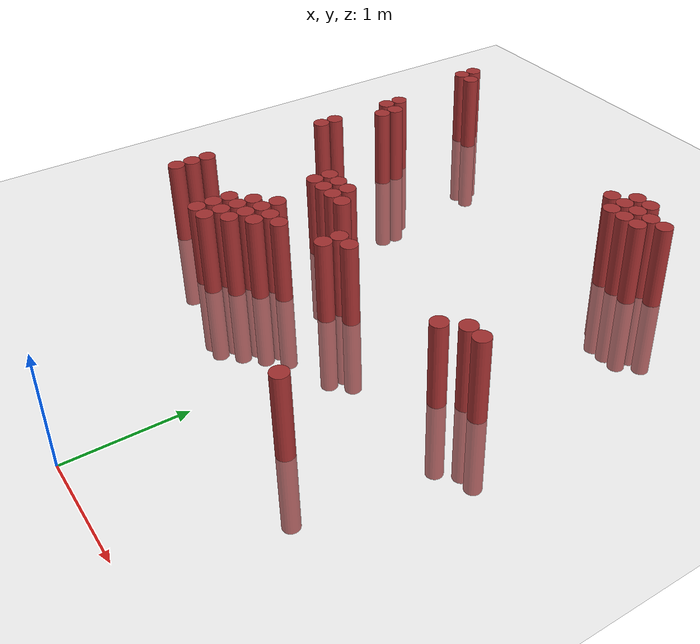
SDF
<sdf version="1.6">
 <world name="default">
  <model name="ground_plane">
   <static>1</static>
   <link name="link">
    <collision name="collision">
     <geometry><plane><normal>0 0 1</normal><size>100 100</size></plane></geometry>
     <surface><friction><ode><mu>100</mu><mu2>50</mu2></ode></friction></surface>
    </collision>
    <visual name="visual">
     <cast_shadows>0</cast_shadows>
     <geometry><plane><normal>0 0 1</normal><size>100 100</size></plane></geometry>
     <material>
      <script><uri>file://media/materials/scripts/gazebo.material</uri><name>Gazebo/Grey</name></script>
     </material>
    </visual>
   </link>
  </model>
  <model name="unit_cylinder_319">
   <static>1</static>
   <pose>-2.375000 5.275000 0.000000 0.000000 0.000000 0.000000</pose>
   <link name="link">
    <inertial>
     <mass>1</mass>
     <inertia><ixx>0.145833</ixx><ixy>0</ixy><ixz>0</ixz><iyy>0.145833</iyy><iyz>0</iyz><izz>0.125</izz></inertia>
    </inertial>
    <collision name="collision">
     <geometry><cylinder><radius>0.075000</radius><length>1.5</length></cylinder></geometry>
    </collision>
    <visual name="visual">
     <geometry><cylinder><radius>0.075000</radius><length>1.5</length></cylinder></geometry>
     <material>
      <ambient>0.648000 0.192000 0.192000 1</ambient>
      <diffuse>0.648000 0.192000 0.192000 1</diffuse>
     </material>
     <material>
      <script><name>Gazebo/Grey</name><uri>file://media/materials/scripts/gazebo.material</uri></script>
     </material>
    </visual>
   </link>
  </model>
  <model name="unit_cylinder_320">
   <static>1</static>
   <pose>-2.375000 5.425000 0.000000 0.000000 0.000000 0.000000</pose>
   <link name="link">
    <inertial>
     <mass>1</mass>
     <inertia><ixx>0.145833</ixx><ixy>0</ixy><ixz>0</ixz><iyy>0.145833</iyy><iyz>0</iyz><izz>0.125</izz></inertia>
    </inertial>
    <collision name="collision">
     <geometry><cylinder><radius>0.075000</radius><length>1.5</length></cylinder></geometry>
    </collision>
    <visual name="visual">
     <geometry><cylinder><radius>0.075000</radius><length>1.5</length></cylinder></geometry>
     <material>
      <ambient>0.648000 0.192000 0.192000 1</ambient>
      <diffuse>0.648000 0.192000 0.192000 1</diffuse>
     </material>
     <material>
      <script><name>Gazebo/Grey</name><uri>file://media/materials/scripts/gazebo.material</uri></script>
     </material>
    </visual>
   </link>
  </model>
  <model name="unit_cylinder_322">
   <static>1</static>
   <pose>-2.225000 1.975000 0.000000 0.000000 0.000000 0.000000</pose>
   <link name="link">
    <inertial>
     <mass>1</mass>
     <inertia><ixx>0.145833</ixx><ixy>0</ixy><ixz>0</ixz><iyy>0.145833</iyy><iyz>0</iyz><izz>0.125</izz></inertia>
    </inertial>
    <collision name="collision">
     <geometry><cylinder><radius>0.075000</radius><length>1.5</length></cylinder></geometry>
    </collision>
    <visual name="visual">
     <geometry><cylinder><radius>0.075000</radius><length>1.5</length></cylinder></geometry>
     <material>
      <ambient>0.648000 0.192000 0.192000 1</ambient>
      <diffuse>0.648000 0.192000 0.192000 1</diffuse>
     </material>
     <material>
      <script><name>Gazebo/Grey</name><uri>file://media/materials/scripts/gazebo.material</uri></script>
     </material>
    </visual>
   </link>
  </model>
  <model name="unit_cylinder_323">
   <static>1</static>
   <pose>-2.225000 2.125000 0.000000 0.000000 0.000000 0.000000</pose>
   <link name="link">
    <inertial>
     <mass>1</mass>
     <inertia><ixx>0.145833</ixx><ixy>0</ixy><ixz>0</ixz><iyy>0.145833</iyy><iyz>0</iyz><izz>0.125</izz></inertia>
    </inertial>
    <collision name="collision">
     <geometry><cylinder><radius>0.075000</radius><length>1.5</length></cylinder></geometry>
    </collision>
    <visual name="visual">
     <geometry><cylinder><radius>0.075000</radius><length>1.5</length></cylinder></geometry>
     <material>
      <ambient>0.648000 0.192000 0.192000 1</ambient>
      <diffuse>0.648000 0.192000 0.192000 1</diffuse>
     </material>
     <material>
      <script><name>Gazebo/Grey</name><uri>file://media/materials/scripts/gazebo.material</uri></script>
     </material>
    </visual>
   </link>
  </model>
  <model name="unit_cylinder_324">
   <static>1</static>
   <pose>-2.225000 2.275000 0.000000 0.000000 0.000000 0.000000</pose>
   <link name="link">
    <inertial>
     <mass>1</mass>
     <inertia><ixx>0.145833</ixx><ixy>0</ixy><ixz>0</ixz><iyy>0.145833</iyy><iyz>0</iyz><izz>0.125</izz></inertia>
    </inertial>
    <collision name="collision">
     <geometry><cylinder><radius>0.075000</radius><length>1.5</length></cylinder></geometry>
    </collision>
    <visual name="visual">
     <geometry><cylinder><radius>0.075000</radius><length>1.5</length></cylinder></geometry>
     <material>
      <ambient>0.648000 0.192000 0.192000 1</ambient>
      <diffuse>0.648000 0.192000 0.192000 1</diffuse>
     </material>
     <material>
      <script><name>Gazebo/Grey</name><uri>file://media/materials/scripts/gazebo.material</uri></script>
     </material>
    </visual>
   </link>
  </model>
  <model name="unit_cylinder_325">
   <static>1</static>
   <pose>-2.225000 3.475000 0.000000 0.000000 0.000000 0.000000</pose>
   <link name="link">
    <inertial>
     <mass>1</mass>
     <inertia><ixx>0.145833</ixx><ixy>0</ixy><ixz>0</ixz><iyy>0.145833</iyy><iyz>0</iyz><izz>0.125</izz></inertia>
    </inertial>
    <collision name="collision">
     <geometry><cylinder><radius>0.075000</radius><length>1.5</length></cylinder></geometry>
    </collision>
    <visual name="visual">
     <geometry><cylinder><radius>0.075000</radius><length>1.5</length></cylinder></geometry>
     <material>
      <ambient>0.648000 0.192000 0.192000 1</ambient>
      <diffuse>0.648000 0.192000 0.192000 1</diffuse>
     </material>
     <material>
      <script><name>Gazebo/Grey</name><uri>file://media/materials/scripts/gazebo.material</uri></script>
     </material>
    </visual>
   </link>
  </model>
  <model name="unit_cylinder_326">
   <static>1</static>
   <pose>-2.225000 3.625000 0.000000 0.000000 0.000000 0.000000</pose>
   <link name="link">
    <inertial>
     <mass>1</mass>
     <inertia><ixx>0.145833</ixx><ixy>0</ixy><ixz>0</ixz><iyy>0.145833</iyy><iyz>0</iyz><izz>0.125</izz></inertia>
    </inertial>
    <collision name="collision">
     <geometry><cylinder><radius>0.075000</radius><length>1.5</length></cylinder></geometry>
    </collision>
    <visual name="visual">
     <geometry><cylinder><radius>0.075000</radius><length>1.5</length></cylinder></geometry>
     <material>
      <ambient>0.648000 0.192000 0.192000 1</ambient>
      <diffuse>0.648000 0.192000 0.192000 1</diffuse>
     </material>
     <material>
      <script><name>Gazebo/Grey</name><uri>file://media/materials/scripts/gazebo.material</uri></script>
     </material>
    </visual>
   </link>
  </model>
  <model name="unit_cylinder_327">
   <static>1</static>
   <pose>-2.225000 4.225000 0.000000 0.000000 0.000000 0.000000</pose>
   <link name="link">
    <inertial>
     <mass>1</mass>
     <inertia><ixx>0.145833</ixx><ixy>0</ixy><ixz>0</ixz><iyy>0.145833</iyy><iyz>0</iyz><izz>0.125</izz></inertia>
    </inertial>
    <collision name="collision">
     <geometry><cylinder><radius>0.075000</radius><length>1.5</length></cylinder></geometry>
    </collision>
    <visual name="visual">
     <geometry><cylinder><radius>0.075000</radius><length>1.5</length></cylinder></geometry>
     <material>
      <ambient>0.648000 0.192000 0.192000 1</ambient>
      <diffuse>0.648000 0.192000 0.192000 1</diffuse>
     </material>
     <material>
      <script><name>Gazebo/Grey</name><uri>file://media/materials/scripts/gazebo.material</uri></script>
     </material>
    </visual>
   </link>
  </model>
  <model name="unit_cylinder_328">
   <static>1</static>
   <pose>-2.225000 4.375000 0.000000 0.000000 0.000000 0.000000</pose>
   <link name="link">
    <inertial>
     <mass>1</mass>
     <inertia><ixx>0.145833</ixx><ixy>0</ixy><ixz>0</ixz><iyy>0.145833</iyy><iyz>0</iyz><izz>0.125</izz></inertia>
    </inertial>
    <collision name="collision">
     <geometry><cylinder><radius>0.075000</radius><length>1.5</length></cylinder></geometry>
    </collision>
    <visual name="visual">
     <geometry><cylinder><radius>0.075000</radius><length>1.5</length></cylinder></geometry>
     <material>
      <ambient>0.648000 0.192000 0.192000 1</ambient>
      <diffuse>0.648000 0.192000 0.192000 1</diffuse>
     </material>
     <material>
      <script><name>Gazebo/Grey</name><uri>file://media/materials/scripts/gazebo.material</uri></script>
     </material>
    </visual>
   </link>
  </model>
  <model name="unit_cylinder_329">
   <static>1</static>
   <pose>-2.225000 5.275000 0.000000 0.000000 0.000000 0.000000</pose>
   <link name="link">
    <inertial>
     <mass>1</mass>
     <inertia><ixx>0.145833</ixx><ixy>0</ixy><ixz>0</ixz><iyy>0.145833</iyy><iyz>0</iyz><izz>0.125</izz></inertia>
    </inertial>
    <collision name="collision">
     <geometry><cylinder><radius>0.075000</radius><length>1.5</length></cylinder></geometry>
    </collision>
    <visual name="visual">
     <geometry><cylinder><radius>0.075000</radius><length>1.5</length></cylinder></geometry>
     <material>
      <ambient>0.648000 0.192000 0.192000 1</ambient>
      <diffuse>0.648000 0.192000 0.192000 1</diffuse>
     </material>
     <material>
      <script><name>Gazebo/Grey</name><uri>file://media/materials/scripts/gazebo.material</uri></script>
     </material>
    </visual>
   </link>
  </model>
  <model name="unit_cylinder_332">
   <static>1</static>
   <pose>-2.075000 4.075000 0.000000 0.000000 0.000000 0.000000</pose>
   <link name="link">
    <inertial>
     <mass>1</mass>
     <inertia><ixx>0.145833</ixx><ixy>0</ixy><ixz>0</ixz><iyy>0.145833</iyy><iyz>0</iyz><izz>0.125</izz></inertia>
    </inertial>
    <collision name="collision">
     <geometry><cylinder><radius>0.075000</radius><length>1.5</length></cylinder></geometry>
    </collision>
    <visual name="visual">
     <geometry><cylinder><radius>0.075000</radius><length>1.5</length></cylinder></geometry>
     <material>
      <ambient>0.648000 0.192000 0.192000 1</ambient>
      <diffuse>0.648000 0.192000 0.192000 1</diffuse>
     </material>
     <material>
      <script><name>Gazebo/Grey</name><uri>file://media/materials/scripts/gazebo.material</uri></script>
     </material>
    </visual>
   </link>
  </model>
  <model name="unit_cylinder_333">
   <static>1</static>
   <pose>-2.075000 4.225000 0.000000 0.000000 0.000000 0.000000</pose>
   <link name="link">
    <inertial>
     <mass>1</mass>
     <inertia><ixx>0.145833</ixx><ixy>0</ixy><ixz>0</ixz><iyy>0.145833</iyy><iyz>0</iyz><izz>0.125</izz></inertia>
    </inertial>
    <collision name="collision">
     <geometry><cylinder><radius>0.075000</radius><length>1.5</length></cylinder></geometry>
    </collision>
    <visual name="visual">
     <geometry><cylinder><radius>0.075000</radius><length>1.5</length></cylinder></geometry>
     <material>
      <ambient>0.648000 0.192000 0.192000 1</ambient>
      <diffuse>0.648000 0.192000 0.192000 1</diffuse>
     </material>
     <material>
      <script><name>Gazebo/Grey</name><uri>file://media/materials/scripts/gazebo.material</uri></script>
     </material>
    </visual>
   </link>
  </model>
  <model name="unit_cylinder_334">
   <static>1</static>
   <pose>-1.475000 1.825000 0.000000 0.000000 0.000000 0.000000</pose>
   <link name="link">
    <inertial>
     <mass>1</mass>
     <inertia><ixx>0.145833</ixx><ixy>0</ixy><ixz>0</ixz><iyy>0.145833</iyy><iyz>0</iyz><izz>0.125</izz></inertia>
    </inertial>
    <collision name="collision">
     <geometry><cylinder><radius>0.075000</radius><length>1.5</length></cylinder></geometry>
    </collision>
    <visual name="visual">
     <geometry><cylinder><radius>0.075000</radius><length>1.5</length></cylinder></geometry>
     <material>
      <ambient>0.648000 0.192000 0.192000 1</ambient>
      <diffuse>0.648000 0.192000 0.192000 1</diffuse>
     </material>
     <material>
      <script><name>Gazebo/Grey</name><uri>file://media/materials/scripts/gazebo.material</uri></script>
     </material>
    </visual>
   </link>
  </model>
  <model name="unit_cylinder_335">
   <static>1</static>
   <pose>-1.475000 1.975000 0.000000 0.000000 0.000000 0.000000</pose>
   <link name="link">
    <inertial>
     <mass>1</mass>
     <inertia><ixx>0.145833</ixx><ixy>0</ixy><ixz>0</ixz><iyy>0.145833</iyy><iyz>0</iyz><izz>0.125</izz></inertia>
    </inertial>
    <collision name="collision">
     <geometry><cylinder><radius>0.075000</radius><length>1.5</length></cylinder></geometry>
    </collision>
    <visual name="visual">
     <geometry><cylinder><radius>0.075000</radius><length>1.5</length></cylinder></geometry>
     <material>
      <ambient>0.648000 0.192000 0.192000 1</ambient>
      <diffuse>0.648000 0.192000 0.192000 1</diffuse>
     </material>
     <material>
      <script><name>Gazebo/Grey</name><uri>file://media/materials/scripts/gazebo.material</uri></script>
     </material>
    </visual>
   </link>
  </model>
  <model name="unit_cylinder_336">
   <static>1</static>
   <pose>-1.475000 2.125000 0.000000 0.000000 0.000000 0.000000</pose>
   <link name="link">
    <inertial>
     <mass>1</mass>
     <inertia><ixx>0.145833</ixx><ixy>0</ixy><ixz>0</ixz><iyy>0.145833</iyy><iyz>0</iyz><izz>0.125</izz></inertia>
    </inertial>
    <collision name="collision">
     <geometry><cylinder><radius>0.075000</radius><length>1.5</length></cylinder></geometry>
    </collision>
    <visual name="visual">
     <geometry><cylinder><radius>0.075000</radius><length>1.5</length></cylinder></geometry>
     <material>
      <ambient>0.648000 0.192000 0.192000 1</ambient>
      <diffuse>0.648000 0.192000 0.192000 1</diffuse>
     </material>
     <material>
      <script><name>Gazebo/Grey</name><uri>file://media/materials/scripts/gazebo.material</uri></script>
     </material>
    </visual>
   </link>
  </model>
  <model name="unit_cylinder_337">
   <static>1</static>
   <pose>-1.325000 1.825000 0.000000 0.000000 0.000000 0.000000</pose>
   <link name="link">
    <inertial>
     <mass>1</mass>
     <inertia><ixx>0.145833</ixx><ixy>0</ixy><ixz>0</ixz><iyy>0.145833</iyy><iyz>0</iyz><izz>0.125</izz></inertia>
    </inertial>
    <collision name="collision">
     <geometry><cylinder><radius>0.075000</radius><length>1.5</length></cylinder></geometry>
    </collision>
    <visual name="visual">
     <geometry><cylinder><radius>0.075000</radius><length>1.5</length></cylinder></geometry>
     <material>
      <ambient>0.648000 0.192000 0.192000 1</ambient>
      <diffuse>0.648000 0.192000 0.192000 1</diffuse>
     </material>
     <material>
      <script><name>Gazebo/Grey</name><uri>file://media/materials/scripts/gazebo.material</uri></script>
     </material>
    </visual>
   </link>
  </model>
  <model name="unit_cylinder_338">
   <static>1</static>
   <pose>-1.325000 1.975000 0.000000 0.000000 0.000000 0.000000</pose>
   <link name="link">
    <inertial>
     <mass>1</mass>
     <inertia><ixx>0.145833</ixx><ixy>0</ixy><ixz>0</ixz><iyy>0.145833</iyy><iyz>0</iyz><izz>0.125</izz></inertia>
    </inertial>
    <collision name="collision">
     <geometry><cylinder><radius>0.075000</radius><length>1.5</length></cylinder></geometry>
    </collision>
    <visual name="visual">
     <geometry><cylinder><radius>0.075000</radius><length>1.5</length></cylinder></geometry>
     <material>
      <ambient>0.648000 0.192000 0.192000 1</ambient>
      <diffuse>0.648000 0.192000 0.192000 1</diffuse>
     </material>
     <material>
      <script><name>Gazebo/Grey</name><uri>file://media/materials/scripts/gazebo.material</uri></script>
     </material>
    </visual>
   </link>
  </model>
  <model name="unit_cylinder_339">
   <static>1</static>
   <pose>-1.325000 2.125000 0.000000 0.000000 0.000000 0.000000</pose>
   <link name="link">
    <inertial>
     <mass>1</mass>
     <inertia><ixx>0.145833</ixx><ixy>0</ixy><ixz>0</ixz><iyy>0.145833</iyy><iyz>0</iyz><izz>0.125</izz></inertia>
    </inertial>
    <collision name="collision">
     <geometry><cylinder><radius>0.075000</radius><length>1.5</length></cylinder></geometry>
    </collision>
    <visual name="visual">
     <geometry><cylinder><radius>0.075000</radius><length>1.5</length></cylinder></geometry>
     <material>
      <ambient>0.648000 0.192000 0.192000 1</ambient>
      <diffuse>0.648000 0.192000 0.192000 1</diffuse>
     </material>
     <material>
      <script><name>Gazebo/Grey</name><uri>file://media/materials/scripts/gazebo.material</uri></script>
     </material>
    </visual>
   </link>
  </model>
  <model name="unit_cylinder_340">
   <static>1</static>
   <pose>-1.325000 2.275000 0.000000 0.000000 0.000000 0.000000</pose>
   <link name="link">
    <inertial>
     <mass>1</mass>
     <inertia><ixx>0.145833</ixx><ixy>0</ixy><ixz>0</ixz><iyy>0.145833</iyy><iyz>0</iyz><izz>0.125</izz></inertia>
    </inertial>
    <collision name="collision">
     <geometry><cylinder><radius>0.075000</radius><length>1.5</length></cylinder></geometry>
    </collision>
    <visual name="visual">
     <geometry><cylinder><radius>0.075000</radius><length>1.5</length></cylinder></geometry>
     <material>
      <ambient>0.648000 0.192000 0.192000 1</ambient>
      <diffuse>0.648000 0.192000 0.192000 1</diffuse>
     </material>
     <material>
      <script><name>Gazebo/Grey</name><uri>file://media/materials/scripts/gazebo.material</uri></script>
     </material>
    </visual>
   </link>
  </model>
  <model name="unit_cylinder_341">
   <static>1</static>
   <pose>-1.325000 2.875000 0.000000 0.000000 0.000000 0.000000</pose>
   <link name="link">
    <inertial>
     <mass>1</mass>
     <inertia><ixx>0.145833</ixx><ixy>0</ixy><ixz>0</ixz><iyy>0.145833</iyy><iyz>0</iyz><izz>0.125</izz></inertia>
    </inertial>
    <collision name="collision">
     <geometry><cylinder><radius>0.075000</radius><length>1.5</length></cylinder></geometry>
    </collision>
    <visual name="visual">
     <geometry><cylinder><radius>0.075000</radius><length>1.5</length></cylinder></geometry>
     <material>
      <ambient>0.648000 0.192000 0.192000 1</ambient>
      <diffuse>0.648000 0.192000 0.192000 1</diffuse>
     </material>
     <material>
      <script><name>Gazebo/Grey</name><uri>file://media/materials/scripts/gazebo.material</uri></script>
     </material>
    </visual>
   </link>
  </model>
  <model name="unit_cylinder_342">
   <static>1</static>
   <pose>-1.325000 3.025000 0.000000 0.000000 0.000000 0.000000</pose>
   <link name="link">
    <inertial>
     <mass>1</mass>
     <inertia><ixx>0.145833</ixx><ixy>0</ixy><ixz>0</ixz><iyy>0.145833</iyy><iyz>0</iyz><izz>0.125</izz></inertia>
    </inertial>
    <collision name="collision">
     <geometry><cylinder><radius>0.075000</radius><length>1.5</length></cylinder></geometry>
    </collision>
    <visual name="visual">
     <geometry><cylinder><radius>0.075000</radius><length>1.5</length></cylinder></geometry>
     <material>
      <ambient>0.648000 0.192000 0.192000 1</ambient>
      <diffuse>0.648000 0.192000 0.192000 1</diffuse>
     </material>
     <material>
      <script><name>Gazebo/Grey</name><uri>file://media/materials/scripts/gazebo.material</uri></script>
     </material>
    </visual>
   </link>
  </model>
  <model name="unit_cylinder_343">
   <static>1</static>
   <pose>-1.175000 1.975000 0.000000 0.000000 0.000000 0.000000</pose>
   <link name="link">
    <inertial>
     <mass>1</mass>
     <inertia><ixx>0.145833</ixx><ixy>0</ixy><ixz>0</ixz><iyy>0.145833</iyy><iyz>0</iyz><izz>0.125</izz></inertia>
    </inertial>
    <collision name="collision">
     <geometry><cylinder><radius>0.075000</radius><length>1.5</length></cylinder></geometry>
    </collision>
    <visual name="visual">
     <geometry><cylinder><radius>0.075000</radius><length>1.5</length></cylinder></geometry>
     <material>
      <ambient>0.648000 0.192000 0.192000 1</ambient>
      <diffuse>0.648000 0.192000 0.192000 1</diffuse>
     </material>
     <material>
      <script><name>Gazebo/Grey</name><uri>file://media/materials/scripts/gazebo.material</uri></script>
     </material>
    </visual>
   </link>
  </model>
  <model name="unit_cylinder_344">
   <static>1</static>
   <pose>-1.175000 2.125000 0.000000 0.000000 0.000000 0.000000</pose>
   <link name="link">
    <inertial>
     <mass>1</mass>
     <inertia><ixx>0.145833</ixx><ixy>0</ixy><ixz>0</ixz><iyy>0.145833</iyy><iyz>0</iyz><izz>0.125</izz></inertia>
    </inertial>
    <collision name="collision">
     <geometry><cylinder><radius>0.075000</radius><length>1.5</length></cylinder></geometry>
    </collision>
    <visual name="visual">
     <geometry><cylinder><radius>0.075000</radius><length>1.5</length></cylinder></geometry>
     <material>
      <ambient>0.648000 0.192000 0.192000 1</ambient>
      <diffuse>0.648000 0.192000 0.192000 1</diffuse>
     </material>
     <material>
      <script><name>Gazebo/Grey</name><uri>file://media/materials/scripts/gazebo.material</uri></script>
     </material>
    </visual>
   </link>
  </model>
  <model name="unit_cylinder_345">
   <static>1</static>
   <pose>-1.175000 2.275000 0.000000 0.000000 0.000000 0.000000</pose>
   <link name="link">
    <inertial>
     <mass>1</mass>
     <inertia><ixx>0.145833</ixx><ixy>0</ixy><ixz>0</ixz><iyy>0.145833</iyy><iyz>0</iyz><izz>0.125</izz></inertia>
    </inertial>
    <collision name="collision">
     <geometry><cylinder><radius>0.075000</radius><length>1.5</length></cylinder></geometry>
    </collision>
    <visual name="visual">
     <geometry><cylinder><radius>0.075000</radius><length>1.5</length></cylinder></geometry>
     <material>
      <ambient>0.648000 0.192000 0.192000 1</ambient>
      <diffuse>0.648000 0.192000 0.192000 1</diffuse>
     </material>
     <material>
      <script><name>Gazebo/Grey</name><uri>file://media/materials/scripts/gazebo.material</uri></script>
     </material>
    </visual>
   </link>
  </model>
  <model name="unit_cylinder_346">
   <static>1</static>
   <pose>-1.175000 2.425000 0.000000 0.000000 0.000000 0.000000</pose>
   <link name="link">
    <inertial>
     <mass>1</mass>
     <inertia><ixx>0.145833</ixx><ixy>0</ixy><ixz>0</ixz><iyy>0.145833</iyy><iyz>0</iyz><izz>0.125</izz></inertia>
    </inertial>
    <collision name="collision">
     <geometry><cylinder><radius>0.075000</radius><length>1.5</length></cylinder></geometry>
    </collision>
    <visual name="visual">
     <geometry><cylinder><radius>0.075000</radius><length>1.5</length></cylinder></geometry>
     <material>
      <ambient>0.648000 0.192000 0.192000 1</ambient>
      <diffuse>0.648000 0.192000 0.192000 1</diffuse>
     </material>
     <material>
      <script><name>Gazebo/Grey</name><uri>file://media/materials/scripts/gazebo.material</uri></script>
     </material>
    </visual>
   </link>
  </model>
  <model name="unit_cylinder_347">
   <static>1</static>
   <pose>-1.175000 2.875000 0.000000 0.000000 0.000000 0.000000</pose>
   <link name="link">
    <inertial>
     <mass>1</mass>
     <inertia><ixx>0.145833</ixx><ixy>0</ixy><ixz>0</ixz><iyy>0.145833</iyy><iyz>0</iyz><izz>0.125</izz></inertia>
    </inertial>
    <collision name="collision">
     <geometry><cylinder><radius>0.075000</radius><length>1.5</length></cylinder></geometry>
    </collision>
    <visual name="visual">
     <geometry><cylinder><radius>0.075000</radius><length>1.5</length></cylinder></geometry>
     <material>
      <ambient>0.648000 0.192000 0.192000 1</ambient>
      <diffuse>0.648000 0.192000 0.192000 1</diffuse>
     </material>
     <material>
      <script><name>Gazebo/Grey</name><uri>file://media/materials/scripts/gazebo.material</uri></script>
     </material>
    </visual>
   </link>
  </model>
  <model name="unit_cylinder_348">
   <static>1</static>
   <pose>-1.175000 3.025000 0.000000 0.000000 0.000000 0.000000</pose>
   <link name="link">
    <inertial>
     <mass>1</mass>
     <inertia><ixx>0.145833</ixx><ixy>0</ixy><ixz>0</ixz><iyy>0.145833</iyy><iyz>0</iyz><izz>0.125</izz></inertia>
    </inertial>
    <collision name="collision">
     <geometry><cylinder><radius>0.075000</radius><length>1.5</length></cylinder></geometry>
    </collision>
    <visual name="visual">
     <geometry><cylinder><radius>0.075000</radius><length>1.5</length></cylinder></geometry>
     <material>
      <ambient>0.648000 0.192000 0.192000 1</ambient>
      <diffuse>0.648000 0.192000 0.192000 1</diffuse>
     </material>
     <material>
      <script><name>Gazebo/Grey</name><uri>file://media/materials/scripts/gazebo.material</uri></script>
     </material>
    </visual>
   </link>
  </model>
  <model name="unit_cylinder_349">
   <static>1</static>
   <pose>-1.025000 2.125000 0.000000 0.000000 0.000000 0.000000</pose>
   <link name="link">
    <inertial>
     <mass>1</mass>
     <inertia><ixx>0.145833</ixx><ixy>0</ixy><ixz>0</ixz><iyy>0.145833</iyy><iyz>0</iyz><izz>0.125</izz></inertia>
    </inertial>
    <collision name="collision">
     <geometry><cylinder><radius>0.075000</radius><length>1.5</length></cylinder></geometry>
    </collision>
    <visual name="visual">
     <geometry><cylinder><radius>0.075000</radius><length>1.5</length></cylinder></geometry>
     <material>
      <ambient>0.648000 0.192000 0.192000 1</ambient>
      <diffuse>0.648000 0.192000 0.192000 1</diffuse>
     </material>
     <material>
      <script><name>Gazebo/Grey</name><uri>file://media/materials/scripts/gazebo.material</uri></script>
     </material>
    </visual>
   </link>
  </model>
  <model name="unit_cylinder_350">
   <static>1</static>
   <pose>-1.025000 2.275000 0.000000 0.000000 0.000000 0.000000</pose>
   <link name="link">
    <inertial>
     <mass>1</mass>
     <inertia><ixx>0.145833</ixx><ixy>0</ixy><ixz>0</ixz><iyy>0.145833</iyy><iyz>0</iyz><izz>0.125</izz></inertia>
    </inertial>
    <collision name="collision">
     <geometry><cylinder><radius>0.075000</radius><length>1.5</length></cylinder></geometry>
    </collision>
    <visual name="visual">
     <geometry><cylinder><radius>0.075000</radius><length>1.5</length></cylinder></geometry>
     <material>
      <ambient>0.648000 0.192000 0.192000 1</ambient>
      <diffuse>0.648000 0.192000 0.192000 1</diffuse>
     </material>
     <material>
      <script><name>Gazebo/Grey</name><uri>file://media/materials/scripts/gazebo.material</uri></script>
     </material>
    </visual>
   </link>
  </model>
  <model name="unit_cylinder_351">
   <static>1</static>
   <pose>-1.025000 2.875000 0.000000 0.000000 0.000000 0.000000</pose>
   <link name="link">
    <inertial>
     <mass>1</mass>
     <inertia><ixx>0.145833</ixx><ixy>0</ixy><ixz>0</ixz><iyy>0.145833</iyy><iyz>0</iyz><izz>0.125</izz></inertia>
    </inertial>
    <collision name="collision">
     <geometry><cylinder><radius>0.075000</radius><length>1.5</length></cylinder></geometry>
    </collision>
    <visual name="visual">
     <geometry><cylinder><radius>0.075000</radius><length>1.5</length></cylinder></geometry>
     <material>
      <ambient>0.648000 0.192000 0.192000 1</ambient>
      <diffuse>0.648000 0.192000 0.192000 1</diffuse>
     </material>
     <material>
      <script><name>Gazebo/Grey</name><uri>file://media/materials/scripts/gazebo.material</uri></script>
     </material>
    </visual>
   </link>
  </model>
  <model name="unit_cylinder_352">
   <static>1</static>
   <pose>-1.025000 3.025000 0.000000 0.000000 0.000000 0.000000</pose>
   <link name="link">
    <inertial>
     <mass>1</mass>
     <inertia><ixx>0.145833</ixx><ixy>0</ixy><ixz>0</ixz><iyy>0.145833</iyy><iyz>0</iyz><izz>0.125</izz></inertia>
    </inertial>
    <collision name="collision">
     <geometry><cylinder><radius>0.075000</radius><length>1.5</length></cylinder></geometry>
    </collision>
    <visual name="visual">
     <geometry><cylinder><radius>0.075000</radius><length>1.5</length></cylinder></geometry>
     <material>
      <ambient>0.648000 0.192000 0.192000 1</ambient>
      <diffuse>0.648000 0.192000 0.192000 1</diffuse>
     </material>
     <material>
      <script><name>Gazebo/Grey</name><uri>file://media/materials/scripts/gazebo.material</uri></script>
     </material>
    </visual>
   </link>
  </model>
  <model name="unit_cylinder_355">
   <static>1</static>
   <pose>-0.875000 2.275000 0.000000 0.000000 0.000000 0.000000</pose>
   <link name="link">
    <inertial>
     <mass>1</mass>
     <inertia><ixx>0.145833</ixx><ixy>0</ixy><ixz>0</ixz><iyy>0.145833</iyy><iyz>0</iyz><izz>0.125</izz></inertia>
    </inertial>
    <collision name="collision">
     <geometry><cylinder><radius>0.075000</radius><length>1.5</length></cylinder></geometry>
    </collision>
    <visual name="visual">
     <geometry><cylinder><radius>0.075000</radius><length>1.5</length></cylinder></geometry>
     <material>
      <ambient>0.648000 0.192000 0.192000 1</ambient>
      <diffuse>0.648000 0.192000 0.192000 1</diffuse>
     </material>
     <material>
      <script><name>Gazebo/Grey</name><uri>file://media/materials/scripts/gazebo.material</uri></script>
     </material>
    </visual>
   </link>
  </model>
  <model name="unit_cylinder_356">
   <static>1</static>
   <pose>-0.875000 2.875000 0.000000 0.000000 0.000000 0.000000</pose>
   <link name="link">
    <inertial>
     <mass>1</mass>
     <inertia><ixx>0.145833</ixx><ixy>0</ixy><ixz>0</ixz><iyy>0.145833</iyy><iyz>0</iyz><izz>0.125</izz></inertia>
    </inertial>
    <collision name="collision">
     <geometry><cylinder><radius>0.075000</radius><length>1.5</length></cylinder></geometry>
    </collision>
    <visual name="visual">
     <geometry><cylinder><radius>0.075000</radius><length>1.5</length></cylinder></geometry>
     <material>
      <ambient>0.648000 0.192000 0.192000 1</ambient>
      <diffuse>0.648000 0.192000 0.192000 1</diffuse>
     </material>
     <material>
      <script><name>Gazebo/Grey</name><uri>file://media/materials/scripts/gazebo.material</uri></script>
     </material>
    </visual>
   </link>
  </model>
  <model name="unit_cylinder_358">
   <static>1</static>
   <pose>-0.425000 2.425000 0.000000 0.000000 0.000000 0.000000</pose>
   <link name="link">
    <inertial>
     <mass>1</mass>
     <inertia><ixx>0.145833</ixx><ixy>0</ixy><ixz>0</ixz><iyy>0.145833</iyy><iyz>0</iyz><izz>0.125</izz></inertia>
    </inertial>
    <collision name="collision">
     <geometry><cylinder><radius>0.075000</radius><length>1.5</length></cylinder></geometry>
    </collision>
    <visual name="visual">
     <geometry><cylinder><radius>0.075000</radius><length>1.5</length></cylinder></geometry>
     <material>
      <ambient>0.648000 0.192000 0.192000 1</ambient>
      <diffuse>0.648000 0.192000 0.192000 1</diffuse>
     </material>
     <material>
      <script><name>Gazebo/Grey</name><uri>file://media/materials/scripts/gazebo.material</uri></script>
     </material>
    </visual>
   </link>
  </model>
  <model name="unit_cylinder_359">
   <static>1</static>
   <pose>-0.425000 2.575000 0.000000 0.000000 0.000000 0.000000</pose>
   <link name="link">
    <inertial>
     <mass>1</mass>
     <inertia><ixx>0.145833</ixx><ixy>0</ixy><ixz>0</ixz><iyy>0.145833</iyy><iyz>0</iyz><izz>0.125</izz></inertia>
    </inertial>
    <collision name="collision">
     <geometry><cylinder><radius>0.075000</radius><length>1.5</length></cylinder></geometry>
    </collision>
    <visual name="visual">
     <geometry><cylinder><radius>0.075000</radius><length>1.5</length></cylinder></geometry>
     <material>
      <ambient>0.648000 0.192000 0.192000 1</ambient>
      <diffuse>0.648000 0.192000 0.192000 1</diffuse>
     </material>
     <material>
      <script><name>Gazebo/Grey</name><uri>file://media/materials/scripts/gazebo.material</uri></script>
     </material>
    </visual>
   </link>
  </model>
  <model name="unit_cylinder_360">
   <static>1</static>
   <pose>-0.275000 2.575000 0.000000 0.000000 0.000000 0.000000</pose>
   <link name="link">
    <inertial>
     <mass>1</mass>
     <inertia><ixx>0.145833</ixx><ixy>0</ixy><ixz>0</ixz><iyy>0.145833</iyy><iyz>0</iyz><izz>0.125</izz></inertia>
    </inertial>
    <collision name="collision">
     <geometry><cylinder><radius>0.075000</radius><length>1.5</length></cylinder></geometry>
    </collision>
    <visual name="visual">
     <geometry><cylinder><radius>0.075000</radius><length>1.5</length></cylinder></geometry>
     <material>
      <ambient>0.648000 0.192000 0.192000 1</ambient>
      <diffuse>0.648000 0.192000 0.192000 1</diffuse>
     </material>
     <material>
      <script><name>Gazebo/Grey</name><uri>file://media/materials/scripts/gazebo.material</uri></script>
     </material>
    </visual>
   </link>
  </model>
  <model name="unit_cylinder_361">
   <static>1</static>
   <pose>0.325000 4.825000 0.000000 0.000000 0.000000 0.000000</pose>
   <link name="link">
    <inertial>
     <mass>1</mass>
     <inertia><ixx>0.145833</ixx><ixy>0</ixy><ixz>0</ixz><iyy>0.145833</iyy><iyz>0</iyz><izz>0.125</izz></inertia>
    </inertial>
    <collision name="collision">
     <geometry><cylinder><radius>0.075000</radius><length>1.5</length></cylinder></geometry>
    </collision>
    <visual name="visual">
     <geometry><cylinder><radius>0.075000</radius><length>1.5</length></cylinder></geometry>
     <material>
      <ambient>0.648000 0.192000 0.192000 1</ambient>
      <diffuse>0.648000 0.192000 0.192000 1</diffuse>
     </material>
     <material>
      <script><name>Gazebo/Grey</name><uri>file://media/materials/scripts/gazebo.material</uri></script>
     </material>
    </visual>
   </link>
  </model>
  <model name="unit_cylinder_362">
   <static>1</static>
   <pose>0.475000 4.675000 0.000000 0.000000 0.000000 0.000000</pose>
   <link name="link">
    <inertial>
     <mass>1</mass>
     <inertia><ixx>0.145833</ixx><ixy>0</ixy><ixz>0</ixz><iyy>0.145833</iyy><iyz>0</iyz><izz>0.125</izz></inertia>
    </inertial>
    <collision name="collision">
     <geometry><cylinder><radius>0.075000</radius><length>1.5</length></cylinder></geometry>
    </collision>
    <visual name="visual">
     <geometry><cylinder><radius>0.075000</radius><length>1.5</length></cylinder></geometry>
     <material>
      <ambient>0.648000 0.192000 0.192000 1</ambient>
      <diffuse>0.648000 0.192000 0.192000 1</diffuse>
     </material>
     <material>
      <script><name>Gazebo/Grey</name><uri>file://media/materials/scripts/gazebo.material</uri></script>
     </material>
    </visual>
   </link>
  </model>
  <model name="unit_cylinder_363">
   <static>1</static>
   <pose>0.475000 4.825000 0.000000 0.000000 0.000000 0.000000</pose>
   <link name="link">
    <inertial>
     <mass>1</mass>
     <inertia><ixx>0.145833</ixx><ixy>0</ixy><ixz>0</ixz><iyy>0.145833</iyy><iyz>0</iyz><izz>0.125</izz></inertia>
    </inertial>
    <collision name="collision">
     <geometry><cylinder><radius>0.075000</radius><length>1.5</length></cylinder></geometry>
    </collision>
    <visual name="visual">
     <geometry><cylinder><radius>0.075000</radius><length>1.5</length></cylinder></geometry>
     <material>
      <ambient>0.648000 0.192000 0.192000 1</ambient>
      <diffuse>0.648000 0.192000 0.192000 1</diffuse>
     </material>
     <material>
      <script><name>Gazebo/Grey</name><uri>file://media/materials/scripts/gazebo.material</uri></script>
     </material>
    </visual>
   </link>
  </model>
  <model name="unit_cylinder_364">
   <static>1</static>
   <pose>0.475000 4.975000 0.000000 0.000000 0.000000 0.000000</pose>
   <link name="link">
    <inertial>
     <mass>1</mass>
     <inertia><ixx>0.145833</ixx><ixy>0</ixy><ixz>0</ixz><iyy>0.145833</iyy><iyz>0</iyz><izz>0.125</izz></inertia>
    </inertial>
    <collision name="collision">
     <geometry><cylinder><radius>0.075000</radius><length>1.5</length></cylinder></geometry>
    </collision>
    <visual name="visual">
     <geometry><cylinder><radius>0.075000</radius><length>1.5</length></cylinder></geometry>
     <material>
      <ambient>0.648000 0.192000 0.192000 1</ambient>
      <diffuse>0.648000 0.192000 0.192000 1</diffuse>
     </material>
     <material>
      <script><name>Gazebo/Grey</name><uri>file://media/materials/scripts/gazebo.material</uri></script>
     </material>
    </visual>
   </link>
  </model>
  <model name="unit_cylinder_367">
   <static>1</static>
   <pose>0.625000 4.675000 0.000000 0.000000 0.000000 0.000000</pose>
   <link name="link">
    <inertial>
     <mass>1</mass>
     <inertia><ixx>0.145833</ixx><ixy>0</ixy><ixz>0</ixz><iyy>0.145833</iyy><iyz>0</iyz><izz>0.125</izz></inertia>
    </inertial>
    <collision name="collision">
     <geometry><cylinder><radius>0.075000</radius><length>1.5</length></cylinder></geometry>
    </collision>
    <visual name="visual">
     <geometry><cylinder><radius>0.075000</radius><length>1.5</length></cylinder></geometry>
     <material>
      <ambient>0.648000 0.192000 0.192000 1</ambient>
      <diffuse>0.648000 0.192000 0.192000 1</diffuse>
     </material>
     <material>
      <script><name>Gazebo/Grey</name><uri>file://media/materials/scripts/gazebo.material</uri></script>
     </material>
    </visual>
   </link>
  </model>
  <model name="unit_cylinder_368">
   <static>1</static>
   <pose>0.625000 4.825000 0.000000 0.000000 0.000000 0.000000</pose>
   <link name="link">
    <inertial>
     <mass>1</mass>
     <inertia><ixx>0.145833</ixx><ixy>0</ixy><ixz>0</ixz><iyy>0.145833</iyy><iyz>0</iyz><izz>0.125</izz></inertia>
    </inertial>
    <collision name="collision">
     <geometry><cylinder><radius>0.075000</radius><length>1.5</length></cylinder></geometry>
    </collision>
    <visual name="visual">
     <geometry><cylinder><radius>0.075000</radius><length>1.5</length></cylinder></geometry>
     <material>
      <ambient>0.648000 0.192000 0.192000 1</ambient>
      <diffuse>0.648000 0.192000 0.192000 1</diffuse>
     </material>
     <material>
      <script><name>Gazebo/Grey</name><uri>file://media/materials/scripts/gazebo.material</uri></script>
     </material>
    </visual>
   </link>
  </model>
  <model name="unit_cylinder_369">
   <static>1</static>
   <pose>0.625000 4.975000 0.000000 0.000000 0.000000 0.000000</pose>
   <link name="link">
    <inertial>
     <mass>1</mass>
     <inertia><ixx>0.145833</ixx><ixy>0</ixy><ixz>0</ixz><iyy>0.145833</iyy><iyz>0</iyz><izz>0.125</izz></inertia>
    </inertial>
    <collision name="collision">
     <geometry><cylinder><radius>0.075000</radius><length>1.5</length></cylinder></geometry>
    </collision>
    <visual name="visual">
     <geometry><cylinder><radius>0.075000</radius><length>1.5</length></cylinder></geometry>
     <material>
      <ambient>0.648000 0.192000 0.192000 1</ambient>
      <diffuse>0.648000 0.192000 0.192000 1</diffuse>
     </material>
     <material>
      <script><name>Gazebo/Grey</name><uri>file://media/materials/scripts/gazebo.material</uri></script>
     </material>
    </visual>
   </link>
  </model>
  <model name="unit_cylinder_372">
   <static>1</static>
   <pose>0.775000 1.375000 0.000000 0.000000 0.000000 0.000000</pose>
   <link name="link">
    <inertial>
     <mass>1</mass>
     <inertia><ixx>0.145833</ixx><ixy>0</ixy><ixz>0</ixz><iyy>0.145833</iyy><iyz>0</iyz><izz>0.125</izz></inertia>
    </inertial>
    <collision name="collision">
     <geometry><cylinder><radius>0.075000</radius><length>1.5</length></cylinder></geometry>
    </collision>
    <visual name="visual">
     <geometry><cylinder><radius>0.075000</radius><length>1.5</length></cylinder></geometry>
     <material>
      <ambient>0.648000 0.192000 0.192000 1</ambient>
      <diffuse>0.648000 0.192000 0.192000 1</diffuse>
     </material>
     <material>
      <script><name>Gazebo/Grey</name><uri>file://media/materials/scripts/gazebo.material</uri></script>
     </material>
    </visual>
   </link>
  </model>
  <model name="unit_cylinder_373">
   <static>1</static>
   <pose>0.775000 4.675000 0.000000 0.000000 0.000000 0.000000</pose>
   <link name="link">
    <inertial>
     <mass>1</mass>
     <inertia><ixx>0.145833</ixx><ixy>0</ixy><ixz>0</ixz><iyy>0.145833</iyy><iyz>0</iyz><izz>0.125</izz></inertia>
    </inertial>
    <collision name="collision">
     <geometry><cylinder><radius>0.075000</radius><length>1.5</length></cylinder></geometry>
    </collision>
    <visual name="visual">
     <geometry><cylinder><radius>0.075000</radius><length>1.5</length></cylinder></geometry>
     <material>
      <ambient>0.648000 0.192000 0.192000 1</ambient>
      <diffuse>0.648000 0.192000 0.192000 1</diffuse>
     </material>
     <material>
      <script><name>Gazebo/Grey</name><uri>file://media/materials/scripts/gazebo.material</uri></script>
     </material>
    </visual>
   </link>
  </model>
  <model name="unit_cylinder_374">
   <static>1</static>
   <pose>0.775000 4.825000 0.000000 0.000000 0.000000 0.000000</pose>
   <link name="link">
    <inertial>
     <mass>1</mass>
     <inertia><ixx>0.145833</ixx><ixy>0</ixy><ixz>0</ixz><iyy>0.145833</iyy><iyz>0</iyz><izz>0.125</izz></inertia>
    </inertial>
    <collision name="collision">
     <geometry><cylinder><radius>0.075000</radius><length>1.5</length></cylinder></geometry>
    </collision>
    <visual name="visual">
     <geometry><cylinder><radius>0.075000</radius><length>1.5</length></cylinder></geometry>
     <material>
      <ambient>0.648000 0.192000 0.192000 1</ambient>
      <diffuse>0.648000 0.192000 0.192000 1</diffuse>
     </material>
     <material>
      <script><name>Gazebo/Grey</name><uri>file://media/materials/scripts/gazebo.material</uri></script>
     </material>
    </visual>
   </link>
  </model>
  <model name="unit_cylinder_377">
   <static>1</static>
   <pose>0.925000 2.575000 0.000000 0.000000 0.000000 0.000000</pose>
   <link name="link">
    <inertial>
     <mass>1</mass>
     <inertia><ixx>0.145833</ixx><ixy>0</ixy><ixz>0</ixz><iyy>0.145833</iyy><iyz>0</iyz><izz>0.125</izz></inertia>
    </inertial>
    <collision name="collision">
     <geometry><cylinder><radius>0.075000</radius><length>1.5</length></cylinder></geometry>
    </collision>
    <visual name="visual">
     <geometry><cylinder><radius>0.075000</radius><length>1.5</length></cylinder></geometry>
     <material>
      <ambient>0.648000 0.192000 0.192000 1</ambient>
      <diffuse>0.648000 0.192000 0.192000 1</diffuse>
     </material>
     <material>
      <script><name>Gazebo/Grey</name><uri>file://media/materials/scripts/gazebo.material</uri></script>
     </material>
    </visual>
   </link>
  </model>
  <model name="unit_cylinder_378">
   <static>1</static>
   <pose>0.925000 4.825000 0.000000 0.000000 0.000000 0.000000</pose>
   <link name="link">
    <inertial>
     <mass>1</mass>
     <inertia><ixx>0.145833</ixx><ixy>0</ixy><ixz>0</ixz><iyy>0.145833</iyy><iyz>0</iyz><izz>0.125</izz></inertia>
    </inertial>
    <collision name="collision">
     <geometry><cylinder><radius>0.075000</radius><length>1.5</length></cylinder></geometry>
    </collision>
    <visual name="visual">
     <geometry><cylinder><radius>0.075000</radius><length>1.5</length></cylinder></geometry>
     <material>
      <ambient>0.648000 0.192000 0.192000 1</ambient>
      <diffuse>0.648000 0.192000 0.192000 1</diffuse>
     </material>
     <material>
      <script><name>Gazebo/Grey</name><uri>file://media/materials/scripts/gazebo.material</uri></script>
     </material>
    </visual>
   </link>
  </model>
  <model name="unit_cylinder_384">
   <static>1</static>
   <pose>1.075000 2.725000 0.000000 0.000000 0.000000 0.000000</pose>
   <link name="link">
    <inertial>
     <mass>1</mass>
     <inertia><ixx>0.145833</ixx><ixy>0</ixy><ixz>0</ixz><iyy>0.145833</iyy><iyz>0</iyz><izz>0.125</izz></inertia>
    </inertial>
    <collision name="collision">
     <geometry><cylinder><radius>0.075000</radius><length>1.5</length></cylinder></geometry>
    </collision>
    <visual name="visual">
     <geometry><cylinder><radius>0.075000</radius><length>1.5</length></cylinder></geometry>
     <material>
      <ambient>0.648000 0.192000 0.192000 1</ambient>
      <diffuse>0.648000 0.192000 0.192000 1</diffuse>
     </material>
     <material>
      <script><name>Gazebo/Grey</name><uri>file://media/materials/scripts/gazebo.material</uri></script>
     </material>
    </visual>
   </link>
  </model>
  <model name="unit_cylinder_386">
   <static>1</static>
   <pose>1.225000 2.725000 0.000000 0.000000 0.000000 0.000000</pose>
   <link name="link">
    <inertial>
     <mass>1</mass>
     <inertia><ixx>0.145833</ixx><ixy>0</ixy><ixz>0</ixz><iyy>0.145833</iyy><iyz>0</iyz><izz>0.125</izz></inertia>
    </inertial>
    <collision name="collision">
     <geometry><cylinder><radius>0.075000</radius><length>1.5</length></cylinder></geometry>
    </collision>
    <visual name="visual">
     <geometry><cylinder><radius>0.075000</radius><length>1.5</length></cylinder></geometry>
     <material>
      <ambient>0.648000 0.192000 0.192000 1</ambient>
      <diffuse>0.648000 0.192000 0.192000 1</diffuse>
     </material>
     <material>
      <script><name>Gazebo/Grey</name><uri>file://media/materials/scripts/gazebo.material</uri></script>
     </material>
    </visual>
   </link>
  </model>
 </world>
</sdf>
